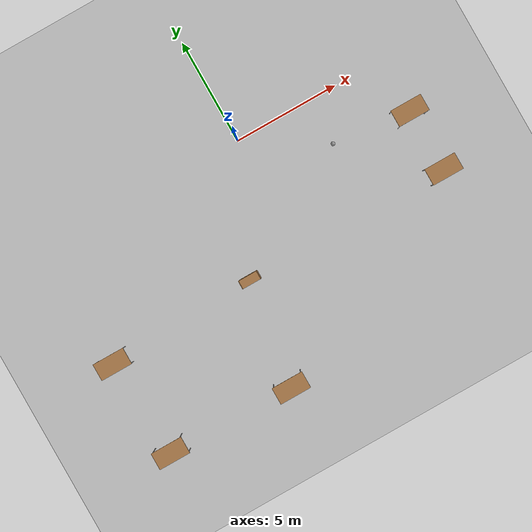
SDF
<sdf version="1.6">
 <world name="default">
  <model name="ground_plane">
   <static>1</static>
   <link name="link">
    <collision name="collision">
     <geometry><plane><normal>0 0 1</normal><size>100 100</size></plane></geometry>
     <surface>
      <contact><collide_bitmask>65535</collide_bitmask></contact>
      <friction><ode><mu>100</mu><mu2>50</mu2></ode></friction>
     </surface>
    </collision>
    <visual name="visual">
     <cast_shadows>0</cast_shadows>
     <geometry><plane><normal>0 0 1</normal><size>100 100</size></plane></geometry>
     <material>
      <script><uri>file://media/materials/scripts/gazebo.material</uri><name>Gazebo/Grey</name></script>
     </material>
    </visual>
   </link>
  </model>
  <model name="table">
   <static>1</static>
   <link name="link">
    <collision name="surface">
     <pose>0 0 1 0 -0 0</pose>
     <geometry><box><size>1.5 0.8 0.03</size></box></geometry>
     <surface><friction><ode><mu>0.6</mu><mu2>0.6</mu2></ode></friction></surface>
    </collision>
    <visual name="visual1">
     <pose>0 0 1 0 -0 0</pose>
     <geometry><box><size>1.5 0.8 0.03</size></box></geometry>
     <material>
      <script><uri>file://media/materials/scripts/gazebo.material</uri><name>Gazebo/Wood</name></script>
     </material>
    </visual>
    <collision name="front_left_leg">
     <pose>0.68 0.38 0.5 0 -0 0</pose>
     <geometry><cylinder><radius>0.02</radius><length>1</length></cylinder></geometry>
    </collision>
    <visual name="front_left_leg">
     <pose>0.68 0.38 0.5 0 -0 0</pose>
     <geometry><cylinder><radius>0.02</radius><length>1</length></cylinder></geometry>
     <material>
      <script><uri>file://media/materials/scripts/gazebo.material</uri><name>Gazebo/Grey</name></script>
     </material>
    </visual>
    <collision name="front_right_leg">
     <pose>0.68 -0.38 0.5 0 -0 0</pose>
     <geometry><cylinder><radius>0.02</radius><length>1</length></cylinder></geometry>
    </collision>
    <visual name="front_right_leg">
     <pose>0.68 -0.38 0.5 0 -0 0</pose>
     <geometry><cylinder><radius>0.02</radius><length>1</length></cylinder></geometry>
     <material>
      <script><uri>file://media/materials/scripts/gazebo.material</uri><name>Gazebo/Grey</name></script>
     </material>
    </visual>
    <collision name="back_right_leg">
     <pose>-0.68 -0.38 0.5 0 -0 0</pose>
     <geometry><cylinder><radius>0.02</radius><length>1</length></cylinder></geometry>
    </collision>
    <visual name="back_right_leg">
     <pose>-0.68 -0.38 0.5 0 -0 0</pose>
     <geometry><cylinder><radius>0.02</radius><length>1</length></cylinder></geometry>
     <material>
      <script><uri>file://media/materials/scripts/gazebo.material</uri><name>Gazebo/Grey</name></script>
     </material>
    </visual>
    <collision name="back_left_leg">
     <pose>-0.68 0.38 0.5 0 -0 0</pose>
     <geometry><cylinder><radius>0.02</radius><length>1</length></cylinder></geometry>
    </collision>
    <visual name="back_left_leg">
     <pose>-0.68 0.38 0.5 0 -0 0</pose>
     <geometry><cylinder><radius>0.02</radius><length>1</length></cylinder></geometry>
     <material>
      <script><uri>file://media/materials/scripts/gazebo.material</uri><name>Gazebo/Grey</name></script>
     </material>
    </visual>
   </link>
   <pose>-3.32434 -10.6283 0 0 -0 0</pose>
  </model>
  <model name="table_0">
   <static>1</static>
   <link name="link">
    <collision name="surface">
     <pose>0 0 1 0 -0 0</pose>
     <geometry><box><size>1.5 0.8 0.03</size></box></geometry>
     <surface><friction><ode><mu>0.6</mu><mu2>0.6</mu2></ode></friction></surface>
    </collision>
    <visual name="visual1">
     <pose>0 0 1 0 -0 0</pose>
     <geometry><box><size>1.5 0.8 0.03</size></box></geometry>
     <material>
      <script><uri>file://media/materials/scripts/gazebo.material</uri><name>Gazebo/Wood</name></script>
     </material>
    </visual>
    <collision name="front_left_leg">
     <pose>0.68 0.38 0.5 0 -0 0</pose>
     <geometry><cylinder><radius>0.02</radius><length>1</length></cylinder></geometry>
    </collision>
    <visual name="front_left_leg">
     <pose>0.68 0.38 0.5 0 -0 0</pose>
     <geometry><cylinder><radius>0.02</radius><length>1</length></cylinder></geometry>
     <material>
      <script><uri>file://media/materials/scripts/gazebo.material</uri><name>Gazebo/Grey</name></script>
     </material>
    </visual>
    <collision name="front_right_leg">
     <pose>0.68 -0.38 0.5 0 -0 0</pose>
     <geometry><cylinder><radius>0.02</radius><length>1</length></cylinder></geometry>
    </collision>
    <visual name="front_right_leg">
     <pose>0.68 -0.38 0.5 0 -0 0</pose>
     <geometry><cylinder><radius>0.02</radius><length>1</length></cylinder></geometry>
     <material>
      <script><uri>file://media/materials/scripts/gazebo.material</uri><name>Gazebo/Grey</name></script>
     </material>
    </visual>
    <collision name="back_right_leg">
     <pose>-0.68 -0.38 0.5 0 -0 0</pose>
     <geometry><cylinder><radius>0.02</radius><length>1</length></cylinder></geometry>
    </collision>
    <visual name="back_right_leg">
     <pose>-0.68 -0.38 0.5 0 -0 0</pose>
     <geometry><cylinder><radius>0.02</radius><length>1</length></cylinder></geometry>
     <material>
      <script><uri>file://media/materials/scripts/gazebo.material</uri><name>Gazebo/Grey</name></script>
     </material>
    </visual>
    <collision name="back_left_leg">
     <pose>-0.68 0.38 0.5 0 -0 0</pose>
     <geometry><cylinder><radius>0.02</radius><length>1</length></cylinder></geometry>
    </collision>
    <visual name="back_left_leg">
     <pose>-0.68 0.38 0.5 0 -0 0</pose>
     <geometry><cylinder><radius>0.02</radius><length>1</length></cylinder></geometry>
     <material>
      <script><uri>file://media/materials/scripts/gazebo.material</uri><name>Gazebo/Grey</name></script>
     </material>
    </visual>
   </link>
   <pose>-9.30922 -10.497 0 0 -0 0</pose>
  </model>
  <model name="table_2">
   <static>1</static>
   <link name="link">
    <collision name="surface">
     <pose>0 0 1 0 -0 0</pose>
     <geometry><box><size>1.5 0.8 0.03</size></box></geometry>
     <surface><friction><ode><mu>0.6</mu><mu2>0.6</mu2></ode></friction></surface>
    </collision>
    <visual name="visual1">
     <pose>0 0 1 0 -0 0</pose>
     <geometry><box><size>1.5 0.8 0.03</size></box></geometry>
     <material>
      <script><uri>file://media/materials/scripts/gazebo.material</uri><name>Gazebo/Wood</name></script>
     </material>
    </visual>
    <collision name="front_left_leg">
     <pose>0.68 0.38 0.5 0 -0 0</pose>
     <geometry><cylinder><radius>0.02</radius><length>1</length></cylinder></geometry>
    </collision>
    <visual name="front_left_leg">
     <pose>0.68 0.38 0.5 0 -0 0</pose>
     <geometry><cylinder><radius>0.02</radius><length>1</length></cylinder></geometry>
     <material>
      <script><uri>file://media/materials/scripts/gazebo.material</uri><name>Gazebo/Grey</name></script>
     </material>
    </visual>
    <collision name="front_right_leg">
     <pose>0.68 -0.38 0.5 0 -0 0</pose>
     <geometry><cylinder><radius>0.02</radius><length>1</length></cylinder></geometry>
    </collision>
    <visual name="front_right_leg">
     <pose>0.68 -0.38 0.5 0 -0 0</pose>
     <geometry><cylinder><radius>0.02</radius><length>1</length></cylinder></geometry>
     <material>
      <script><uri>file://media/materials/scripts/gazebo.material</uri><name>Gazebo/Grey</name></script>
     </material>
    </visual>
    <collision name="back_right_leg">
     <pose>-0.68 -0.38 0.5 0 -0 0</pose>
     <geometry><cylinder><radius>0.02</radius><length>1</length></cylinder></geometry>
    </collision>
    <visual name="back_right_leg">
     <pose>-0.68 -0.38 0.5 0 -0 0</pose>
     <geometry><cylinder><radius>0.02</radius><length>1</length></cylinder></geometry>
     <material>
      <script><uri>file://media/materials/scripts/gazebo.material</uri><name>Gazebo/Grey</name></script>
     </material>
    </visual>
    <collision name="back_left_leg">
     <pose>-0.68 0.38 0.5 0 -0 0</pose>
     <geometry><cylinder><radius>0.02</radius><length>1</length></cylinder></geometry>
    </collision>
    <visual name="back_left_leg">
     <pose>-0.68 0.38 0.5 0 -0 0</pose>
     <geometry><cylinder><radius>0.02</radius><length>1</length></cylinder></geometry>
     <material>
      <script><uri>file://media/materials/scripts/gazebo.material</uri><name>Gazebo/Grey</name></script>
     </material>
    </visual>
   </link>
   <pose>7.17106 -5.63338 0 0 -0 0</pose>
  </model>
  <model name="table_3">
   <static>1</static>
   <link name="link">
    <collision name="surface">
     <pose>0 0 1 0 -0 0</pose>
     <geometry><box><size>1.5 0.8 0.03</size></box></geometry>
     <surface><friction><ode><mu>0.6</mu><mu2>0.6</mu2></ode></friction></surface>
    </collision>
    <visual name="visual1">
     <pose>0 0 1 0 -0 0</pose>
     <geometry><box><size>1.5 0.8 0.03</size></box></geometry>
     <material>
      <script><uri>file://media/materials/scripts/gazebo.material</uri><name>Gazebo/Wood</name></script>
     </material>
    </visual>
    <collision name="front_left_leg">
     <pose>0.68 0.38 0.5 0 -0 0</pose>
     <geometry><cylinder><radius>0.02</radius><length>1</length></cylinder></geometry>
    </collision>
    <visual name="front_left_leg">
     <pose>0.68 0.38 0.5 0 -0 0</pose>
     <geometry><cylinder><radius>0.02</radius><length>1</length></cylinder></geometry>
     <material>
      <script><uri>file://media/materials/scripts/gazebo.material</uri><name>Gazebo/Grey</name></script>
     </material>
    </visual>
    <collision name="front_right_leg">
     <pose>0.68 -0.38 0.5 0 -0 0</pose>
     <geometry><cylinder><radius>0.02</radius><length>1</length></cylinder></geometry>
    </collision>
    <visual name="front_right_leg">
     <pose>0.68 -0.38 0.5 0 -0 0</pose>
     <geometry><cylinder><radius>0.02</radius><length>1</length></cylinder></geometry>
     <material>
      <script><uri>file://media/materials/scripts/gazebo.material</uri><name>Gazebo/Grey</name></script>
     </material>
    </visual>
    <collision name="back_right_leg">
     <pose>-0.68 -0.38 0.5 0 -0 0</pose>
     <geometry><cylinder><radius>0.02</radius><length>1</length></cylinder></geometry>
    </collision>
    <visual name="back_right_leg">
     <pose>-0.68 -0.38 0.5 0 -0 0</pose>
     <geometry><cylinder><radius>0.02</radius><length>1</length></cylinder></geometry>
     <material>
      <script><uri>file://media/materials/scripts/gazebo.material</uri><name>Gazebo/Grey</name></script>
     </material>
    </visual>
    <collision name="back_left_leg">
     <pose>-0.68 0.38 0.5 0 -0 0</pose>
     <geometry><cylinder><radius>0.02</radius><length>1</length></cylinder></geometry>
    </collision>
    <visual name="back_left_leg">
     <pose>-0.68 0.38 0.5 0 -0 0</pose>
     <geometry><cylinder><radius>0.02</radius><length>1</length></cylinder></geometry>
     <material>
      <script><uri>file://media/materials/scripts/gazebo.material</uri><name>Gazebo/Grey</name></script>
     </material>
    </visual>
   </link>
   <pose>7.14519 -2.68574 0 0 -0 0</pose>
  </model>
  <model name="table_6">
   <static>1</static>
   <link name="link">
    <collision name="surface">
     <pose>0 0 1 0 -0 0</pose>
     <geometry><box><size>1.5 0.8 0.03</size></box></geometry>
     <surface><friction><ode><mu>0.6</mu><mu2>0.6</mu2></ode></friction></surface>
    </collision>
    <visual name="visual1">
     <pose>0 0 1 0 -0 0</pose>
     <geometry><box><size>1.5 0.8 0.03</size></box></geometry>
     <material>
      <script><uri>file://media/materials/scripts/gazebo.material</uri><name>Gazebo/Wood</name></script>
     </material>
    </visual>
    <collision name="front_left_leg">
     <pose>0.68 0.38 0.5 0 -0 0</pose>
     <geometry><cylinder><radius>0.02</radius><length>1</length></cylinder></geometry>
    </collision>
    <visual name="front_left_leg">
     <pose>0.68 0.38 0.5 0 -0 0</pose>
     <geometry><cylinder><radius>0.02</radius><length>1</length></cylinder></geometry>
     <material>
      <script><uri>file://media/materials/scripts/gazebo.material</uri><name>Gazebo/Grey</name></script>
     </material>
    </visual>
    <collision name="front_right_leg">
     <pose>0.68 -0.38 0.5 0 -0 0</pose>
     <geometry><cylinder><radius>0.02</radius><length>1</length></cylinder></geometry>
    </collision>
    <visual name="front_right_leg">
     <pose>0.68 -0.38 0.5 0 -0 0</pose>
     <geometry><cylinder><radius>0.02</radius><length>1</length></cylinder></geometry>
     <material>
      <script><uri>file://media/materials/scripts/gazebo.material</uri><name>Gazebo/Grey</name></script>
     </material>
    </visual>
    <collision name="back_right_leg">
     <pose>-0.68 -0.38 0.5 0 -0 0</pose>
     <geometry><cylinder><radius>0.02</radius><length>1</length></cylinder></geometry>
    </collision>
    <visual name="back_right_leg">
     <pose>-0.68 -0.38 0.5 0 -0 0</pose>
     <geometry><cylinder><radius>0.02</radius><length>1</length></cylinder></geometry>
     <material>
      <script><uri>file://media/materials/scripts/gazebo.material</uri><name>Gazebo/Grey</name></script>
     </material>
    </visual>
    <collision name="back_left_leg">
     <pose>-0.68 0.38 0.5 0 -0 0</pose>
     <geometry><cylinder><radius>0.02</radius><length>1</length></cylinder></geometry>
    </collision>
    <visual name="back_left_leg">
     <pose>-0.68 0.38 0.5 0 -0 0</pose>
     <geometry><cylinder><radius>0.02</radius><length>1</length></cylinder></geometry>
     <material>
      <script><uri>file://media/materials/scripts/gazebo.material</uri><name>Gazebo/Grey</name></script>
     </material>
    </visual>
   </link>
   <pose>-9.5881 -5.87366 0 0 -0 0</pose>
  </model>
  <model name="bookshelf">
   <static>1</static>
   <link name="link">
    <inertial><mass>1</mass></inertial>
    <collision name="back">
     <pose>0 0.005 0.6 0 -0 0</pose>
     <geometry><box><size>0.9 0.01 1.2</size></box></geometry>
    </collision>
    <visual name="visual1">
     <pose>0 0.005 0.6 0 -0 0</pose>
     <geometry><box><size>0.9 0.01 1.2</size></box></geometry>
     <material>
      <script><uri>file://media/materials/scripts/gazebo.material</uri><name>Gazebo/Wood</name></script>
     </material>
    </visual>
    <collision name="left_side">
     <pose>0.45 -0.195 0.6 0 -0 0</pose>
     <geometry><box><size>0.02 0.4 1.2</size></box></geometry>
    </collision>
    <visual name="visual2">
     <pose>0.45 -0.195 0.6 0 -0 0</pose>
     <geometry><box><size>0.02 0.4 1.2</size></box></geometry>
     <material>
      <script><uri>file://media/materials/scripts/gazebo.material</uri><name>Gazebo/Wood</name></script>
     </material>
    </visual>
    <collision name="right_side">
     <pose>-0.45 -0.195 0.6 0 -0 0</pose>
     <geometry><box><size>0.02 0.4 1.2</size></box></geometry>
    </collision>
    <visual name="visual3">
     <pose>-0.45 -0.195 0.6 0 -0 0</pose>
     <geometry><box><size>0.02 0.4 1.2</size></box></geometry>
     <material>
      <script><uri>file://media/materials/scripts/gazebo.material</uri><name>Gazebo/Wood</name></script>
     </material>
    </visual>
    <collision name="bottom">
     <pose>0 -0.195 0.03 0 -0 0</pose>
     <geometry><box><size>0.88 0.4 0.06</size></box></geometry>
    </collision>
    <visual name="visual4">
     <pose>0 -0.195 0.03 0 -0 0</pose>
     <geometry><box><size>0.88 0.4 0.06</size></box></geometry>
     <material>
      <script><uri>file://media/materials/scripts/gazebo.material</uri><name>Gazebo/Wood</name></script>
     </material>
    </visual>
    <collision name="top">
     <pose>0 -0.195 1.19 0 -0 0</pose>
     <geometry><box><size>0.88 0.4 0.02</size></box></geometry>
    </collision>
    <visual name="visual5">
     <pose>0 -0.195 1.19 0 -0 0</pose>
     <geometry><box><size>0.88 0.4 0.02</size></box></geometry>
     <material>
      <script><uri>file://media/materials/scripts/gazebo.material</uri><name>Gazebo/Wood</name></script>
     </material>
    </visual>
    <collision name="low_shelf">
     <pose>0 -0.195 0.43 0 -0 0</pose>
     <geometry><box><size>0.88 0.4 0.02</size></box></geometry>
    </collision>
    <visual name="visual6">
     <pose>0 -0.195 0.43 0 -0 0</pose>
     <geometry><box><size>0.88 0.4 0.02</size></box></geometry>
     <material>
      <script><uri>file://media/materials/scripts/gazebo.material</uri><name>Gazebo/Wood</name></script>
     </material>
    </visual>
    <collision name="high_shelf">
     <pose>0 -0.195 0.8 0 -0 0</pose>
     <geometry><box><size>0.88 0.4 0.02</size></box></geometry>
    </collision>
    <visual name="visual7">
     <pose>0 -0.195 0.8 0 -0 0</pose>
     <geometry><box><size>0.88 0.4 0.02</size></box></geometry>
     <material>
      <script><uri>file://media/materials/scripts/gazebo.material</uri><name>Gazebo/Wood</name></script>
     </material>
    </visual>
   </link>
   <pose>-2.56919 -5.44427 0 0 -0 0</pose>
  </model>
  <model name="my_ball">
   <link name="link_0">
    <inertial>
     <mass>1</mass>
     <inertia><ixx>0.1</ixx><ixy>0</ixy><ixz>0</ixz><iyy>0.1</iyy><iyz>0</iyz><izz>0.1</izz></inertia>
    </inertial>
    <visual name="visual">
     <geometry><sphere><radius>0.1</radius></sphere></geometry>
     <material>
      <lighting>1</lighting>
      <script><uri>file://media/materials/scripts/gazebo.material</uri><name>Gazebo/Grey</name></script>
      <shader type="pixel"><normal_map>__default__</normal_map></shader>
      <ambient>1 1 1 1</ambient>
      <diffuse>1 1 1 1</diffuse>
      <specular>1 1 1 1</specular>
      <emissive>1 1 1 1</emissive>
     </material>
    </visual>
    <collision name="collision">
     <geometry><sphere><radius>0.1</radius></sphere></geometry>
     <surface>
      <friction>
       <ode><mu>1</mu><mu2>1</mu2><fdir1>0 0 0</fdir1><slip1>0</slip1><slip2>0</slip2></ode>
       <torsional>
        <coefficient>1</coefficient>
        <patch_radius>0</patch_radius>
        <surface_radius>0</surface_radius>
        <use_patch_radius>1</use_patch_radius>
        <ode><slip>0</slip></ode>
       </torsional>
      </friction>
      <bounce><restitution_coefficient>0</restitution_coefficient><threshold>1e+06</threshold></bounce>
      <contact>
       <collide_without_contact>0</collide_without_contact>
       <collide_without_contact_bitmask>1</collide_without_contact_bitmask>
       <collide_bitmask>1</collide_bitmask>
       <ode>
        <soft_cfm>0</soft_cfm>
        <soft_erp>0.2</soft_erp>
        <kp>1e+13</kp>
        <kd>1</kd>
        <max_vel>0.01</max_vel>
        <min_depth>0</min_depth>
       </ode>
       <bullet>
        <split_impulse>1</split_impulse>
        <split_impulse_penetration_threshold>-0.01</split_impulse_penetration_threshold>
        <soft_cfm>0</soft_cfm>
        <soft_erp>0.2</soft_erp>
        <kp>1e+13</kp>
        <kd>1</kd>
       </bullet>
      </contact>
     </surface>
    </collision>
   </link>
   <static>0</static>
   <pose>3.61091 -2.22921 0.1 0 -0 0</pose>
  </model>
 </world>
</sdf>
